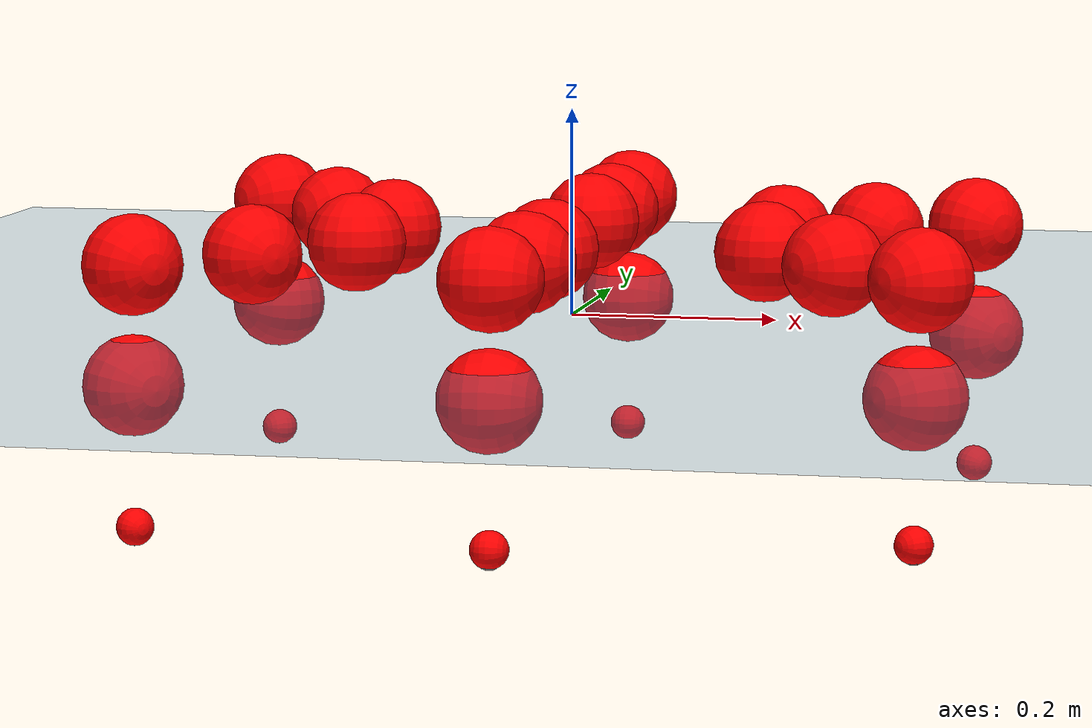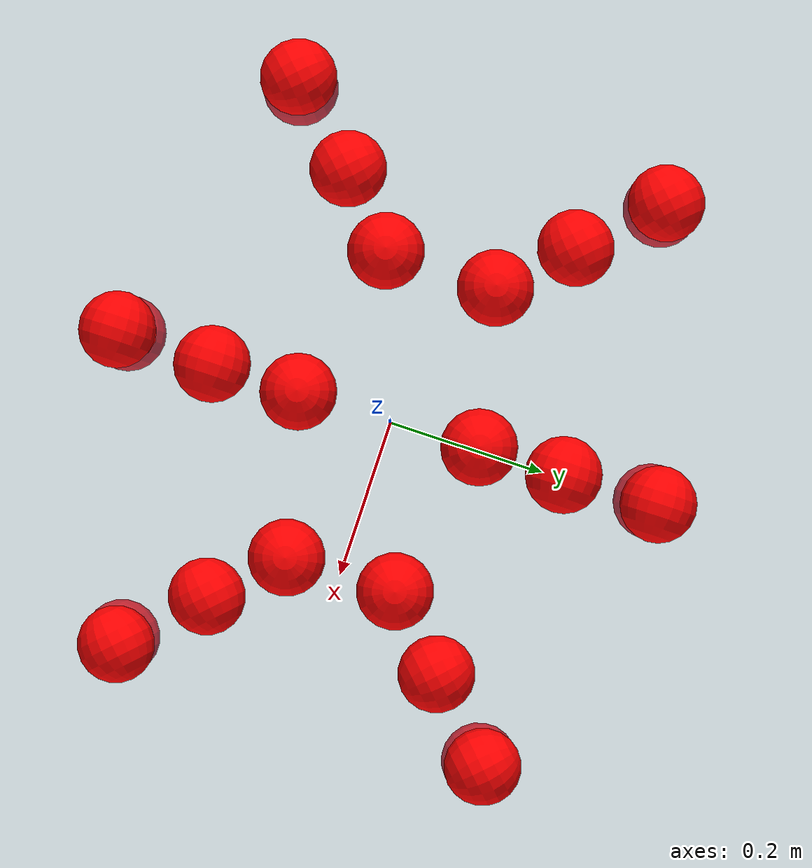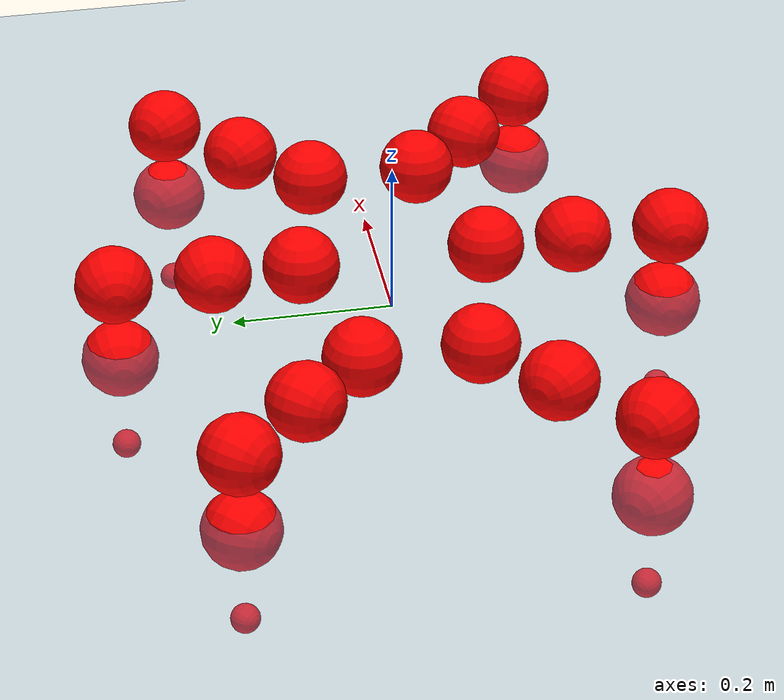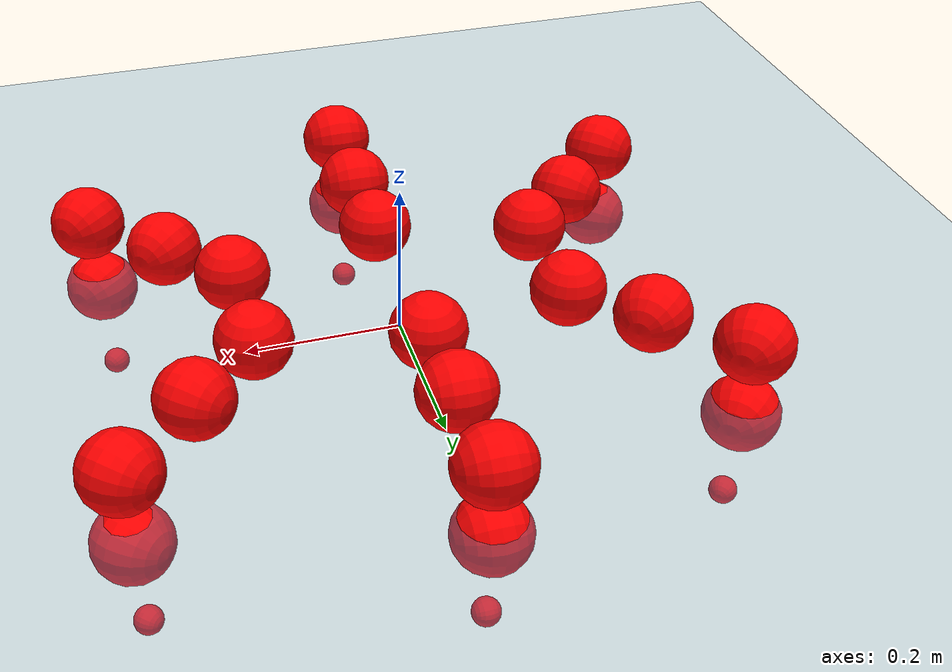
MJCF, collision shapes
<mujoco model="Golem">
  <compiler angle="radian" assetdir="assets" balanceinertia="true" inertiafromgeom="false"/>

  <option timestep="0.005" density="1.2" viscosity="2e-05"/>

  <size nkey="1"/>

  <visual>
    <quality shadowsize="8192"/>
    <map shadowclip="0.5"/>
  </visual>

  <default>
    <default class="/">
      <joint armature="0.01" damping="0.01" frictionloss="0.01"/>
      <geom contype="0" conaffinity="0" group="1" solref="-1000 -80"/>
      <site size="0.01 0.005 0.005" group="5"/>
      <general forcelimited="true" biastype="affine" gainprm="25" biasprm="0 -25 -0.5"/>
      <default class="visual">
        <geom type="mesh" group="2"/>
      </default>
      <default class="collision">
        <geom group="3"/>
      </default>
      <default class="foot">
        <geom size="0.01 0 0" condim="6" group="4" priority="1" solimp="0.015 1 0.01"/>
      </default>
      <default class="reward_collision_sphere">
        <geom group="5" rgba="1 0 0 1"/>
      </default>
    </default>
  </default>

  <asset>
    <texture type="skybox" colorspace="auto" name="//unnamed_texture_0" builtin="gradient" rgb1="0.95 0.95 0.95" rgb2="0.95 0.95 0.95" width="100" height="600"/>
    <texture type="2d" colorspace="auto" name="texplane" builtin="checker" rgb1="0.345 0.575 0.748" rgb2="0.345 0.575 0.748" markrgb="1 1 1" width="512" height="512"/>
    <material name="MatPlane" class="/" texture="texplane" texuniform="true" texrepeat="2 2" specular="0.9"/>
    <mesh name="body" class="/" file="body.stl" scale="0.001 0.001 0.001"/>
    <mesh name="coxa" class="/" file="coxa.stl" scale="0.001 0.001 0.001"/>
    <mesh name="femur" class="/" file="femur.stl" scale="0.001 0.001 0.001"/>
    <mesh name="tibia" class="/" file="tibia.stl" scale="0.001 0.001 0.001"/>
    <mesh name="tarsus" class="/" file="tarsus.stl" scale="0.001 0.001 0.001"/>
  </asset>

  <worldbody>
    <geom name="floor" class="/" size="100 100 0.125" type="plane" group="0" material="MatPlane"/>
    <light name="toplight_shadow" class="/" pos="0 0 5" dir="0.0990148 0.0990148 -0.990148" type="directional" ambient="0.04 0.04 0.04" diffuse="0.55 0.55 0.55" specular="0.12 0.12 0.12"/>
    <light name="toplight_fill" class="/" pos="0 0 5" dir="0.0990148 0.0990148 -0.990148" type="directional" castshadow="false" ambient="0.04 0.04 0.04" diffuse="0.3 0.3 0.3" specular="0.08 0.08 0.08"/>
    <body name="trunk" pos="-0.000662933 -4.47675e-05 -0.00182861" quat="0.999999 0.000735661 0.000411478 -0.000658571">
      <inertial pos="-0.00172367 -0.00294642 0.00161591" quat="0.999935 0.00771006 -0.00651803 0.00535615" mass="6.14462" diaginertia="0.0286949 0.0214919 0.0213945"/>
      <joint name="//unnamed_joint_0" type="free"/>
      <geom name="//unnamed_geom_1" class="/" pos="0 0 0.0750236" quat="1 0 0 0" type="mesh" rgba="0.9 0.9 0.9 1" mesh="body"/>
      <site name="imu" class="/" pos="0.172968 -0.0130166 0.107062" size="0.0119525"/>
      <camera name="track" class="/" pos="0 -2.32868 0" quat="0.707107 0.707107 0 0" mode="trackcom"/>
      <camera name="ego_camera" class="/" pos="0.162392 0 0.117224" quat="-0.5 -0.5 0.5 0.5"/>
      <body name="coxa_RR" pos="-0.223059 -0.0971454 0.0764189" quat="0.38291 2.63575e-06 -0.00012922 -0.923786">
        <inertial pos="-0.0021529 -0.000654886 -0.0021329" quat="0.999987 0.00364415 -0.00320186 0.00161641" mass="0.342037" diaginertia="0.0299448 0.0214315 0.0222424"/>
        <joint name="coxa_joint_RR" class="/" pos="0 0 0" axis="0.0033873 -0.00237848 -0.999991" stiffness="0.000144793" range="-3.18296 3.09443" armature="0.0106529" damping="0" frictionloss="0.0110515"/>
        <geom name="//unnamed_geom_2" class="/" type="mesh" rgba="0.2 0.2 0.2 1" mesh="coxa"/>
        <geom name="//unnamed_geom_3" class="reward_collision_sphere" size="0.04781" pos="-0.037475 0 0"/>
        <body name="femur_RR" pos="0.0744417 -0.00424924 -0.00457475" quat="0.500159 -0.500797 0.499988 0.499054">
          <inertial pos="-0.00258054 -0.00215268 -0.0034293" quat="0.999928 0.00816648 -0.00603453 0.00638774" mass="0.341777" diaginertia="0.0303953 0.022036 0.0215096"/>
          <joint name="femur_joint_RR" class="/" pos="0 0 0" axis="-0.00667696 0.0142581 -0.999876" range="-3.09327 3.13128" armature="0.013526" damping="0.0144865" frictionloss="0.00983328"/>
          <geom name="//unnamed_geom_4" class="/" type="mesh" rgba="0.9 0.9 0.9 1" mesh="femur"/>
          <geom name="//unnamed_geom_5" class="reward_collision_sphere" size="0.04781"/>
          <body name="tibia_RR" pos="0.000727069 -0.128772 0.00388272" quat="-0.000323644 1 0.000359473 -0.000125677">
            <inertial pos="0.00154905 0.00320816 -0.00184563" quat="0.99998 0.00195912 -0.00278895 0.00525496" mass="0.348528" diaginertia="0.0304039 0.0210799 0.0220218"/>
            <joint name="tibia_joint_RR" class="/" pos="0 0 0" axis="-0.00475146 -0.00336357 0.999983" stiffness="0.00800778" range="-3.14125 3.13176" armature="0.0127059" damping="0" frictionloss="0.011307"/>
            <geom name="//unnamed_geom_6" class="/" type="mesh" rgba="0.2 0.2 0.2 1" mesh="tibia"/>
            <geom name="//unnamed_geom_7" class="reward_collision_sphere" size="0.04781"/>
            <body name="tarsus_RR" pos="0.113124 0.000779851 -0.000285725" quat="1 -8.19593e-05 0.000489985 0.000557523">
              <inertial pos="0.0739871 0.00235454 -0.000744604" quat="0.496576 0.49728 0.506553 0.499528" mass="0.344266" diaginertia="0.0298878 0.0208325 0.0228931"/>
              <joint name="tarsus_joint_RR" class="/" pos="0 0 0" axis="0.0148253 -0.00698369 0.999866" range="-3.07351 3.06394" armature="0.0123569" damping="0.00227838" frictionloss="0.0116996"/>
              <geom name="//unnamed_geom_8" class="/" type="mesh" rgba="0.9 0.9 0.9 1" mesh="tarsus"/>
              <geom name="foot_1" class="foot" size="0.0122958" pos="0.139907 0 0" quat="0 -0.707107 0 0.707107"/>
              <geom name="//unnamed_geom_10" class="reward_collision_sphere" size="0.04781"/>
              <geom name="//unnamed_geom_11" class="reward_collision_sphere" size="0.0179287" pos="0.134285 0 0"/>
              <site name="foot_1" class="foot" pos="0.139907 0 0" quat="0 -0.707107 0 0.707107" size="0.0119525"/>
            </body>
          </body>
        </body>
      </body>
      <body name="coxa_RM" pos="0.00196336 -0.155744 0.0804219" quat="0.707063 0.000399384 -0.000965305 -0.70715">
        <inertial pos="0.000916792 -0.0014191 -5.06621e-06" quat="0.999892 0.0109687 0.00186404 0.00963815" mass="0.346902" diaginertia="0.0311436 0.0213834 0.0220769"/>
        <joint name="coxa_joint_RM" class="/" pos="0 0 0" axis="-0.0132129 -0.00769533 -0.999883" range="-3.18629 3.18079" armature="0.0114867" damping="0.0250579" frictionloss="0.0109591"/>
        <geom name="//unnamed_geom_12" class="/" type="mesh" rgba="0.2 0.2 0.2 1" mesh="coxa"/>
        <geom name="//unnamed_geom_13" class="reward_collision_sphere" size="0.04781" pos="-0.037475 0 0"/>
        <body name="femur_RM" pos="0.0737695 0.00087596 0.00111437" quat="0.499552 -0.500473 0.500517 0.499458">
          <inertial pos="0.00240512 -0.00164571 0.00355946" quat="0.999975 -0.00309949 -0.000811965 0.00635323" mass="0.336014" diaginertia="0.0296961 0.0212457 0.0226461"/>
          <joint name="femur_joint_RM" class="/" pos="0 0 0" axis="-0.00801834 0.00468282 -0.999957" stiffness="0.00838558" range="-3.08756 3.09688" armature="0.0134389" damping="0.027406" frictionloss="0.012909"/>
          <geom name="//unnamed_geom_14" class="/" type="mesh" rgba="0.9 0.9 0.9 1" mesh="femur"/>
          <geom name="//unnamed_geom_15" class="reward_collision_sphere" size="0.04781"/>
          <body name="tibia_RM" pos="-3.18305e-05 -0.124107 -0.00355758" quat="0.000701573 1 -8.49624e-05 -0.000658986">
            <inertial pos="0.00161574 0.00292345 -0.00100223" quat="1 0.000288376 0.000145034 -7.93173e-05" mass="0.355489" diaginertia="0.0315892 0.0224584 0.0232907"/>
            <joint name="tibia_joint_RM" class="/" pos="0 0 0" axis="-0.00833393 0.00719918 0.999939" range="-3.08992 3.16252" armature="0.0107319" damping="0.000273079" frictionloss="0.01326"/>
            <geom name="//unnamed_geom_16" class="/" type="mesh" rgba="0.2 0.2 0.2 1" mesh="tibia"/>
            <geom name="//unnamed_geom_17" class="reward_collision_sphere" size="0.04781"/>
            <body name="tarsus_RM" pos="0.109421 -0.00431015 0.00222508" quat="0.999999 0.000788798 -0.000639631 0.000137059">
              <inertial pos="0.072385 -0.000601025 0.000800545" quat="0.500067 0.499954 0.499959 0.500019" mass="0.354436" diaginertia="0.0318383 0.0220336 0.0237573"/>
              <joint name="tarsus_joint_RM" class="/" pos="0 0 0" axis="-0.00876959 0.00746202 0.999934" range="-3.11282 3.19274" armature="0.0118789" damping="0.00565521" frictionloss="0.0104006"/>
              <geom name="//unnamed_geom_18" class="/" type="mesh" rgba="0.9 0.9 0.9 1" mesh="tarsus"/>
              <geom name="foot_2" class="foot" size="0.0130652" pos="0.139907 0 0" quat="0 -0.707107 0 0.707107"/>
              <geom name="//unnamed_geom_20" class="reward_collision_sphere" size="0.04781"/>
              <geom name="//unnamed_geom_21" class="reward_collision_sphere" size="0.0179287" pos="0.134285 0 0"/>
              <site name="foot_2" class="foot" pos="0.139907 0 0" quat="0 -0.707107 0 0.707107" size="0.0119525"/>
            </body>
          </body>
        </body>
      </body>
      <body name="coxa_RF" pos="0.226217 -0.0944187 0.0768038" quat="0.923947 0.000471104 0.000563749 -0.38252">
        <inertial pos="0.00266509 0.00425558 0.00237948" quat="0.999913 -0.0114284 0.00621095 -0.0022993" mass="0.336334" diaginertia="0.0299629 0.0224337 0.0232233"/>
        <joint name="coxa_joint_RF" class="/" pos="0 0 0" axis="0.0140953 0.0031301 -0.999896" range="-3.14395 3.14737" armature="0.0111788" damping="0.00862572" frictionloss="0.0124889"/>
        <geom name="//unnamed_geom_22" class="/" type="mesh" rgba="0.2 0.2 0.2 1" mesh="coxa"/>
        <geom name="//unnamed_geom_23" class="reward_collision_sphere" size="0.04781" pos="-0.037475 0 0"/>
        <body name="femur_RF" pos="0.0714488 -0.00144398 -0.00139958" quat="0.499965 -0.500042 0.50002 0.499973">
          <inertial pos="0.00219196 -0.000120884 -0.00038507" quat="0.999913 0.00520713 0.0120115 0.0016284" mass="0.34823" diaginertia="0.0302228 0.0227792 0.022597"/>
          <joint name="femur_joint_RF" class="/" pos="0 0 0" axis="-0.00179111 0.00184631 -0.999997" range="-3.18275 3.1869" armature="0.0115676" damping="0.00739105" frictionloss="0.0118707"/>
          <geom name="//unnamed_geom_24" class="/" type="mesh" rgba="0.9 0.9 0.9 1" mesh="femur"/>
          <geom name="//unnamed_geom_25" class="reward_collision_sphere" size="0.04781"/>
          <body name="tibia_RF" pos="-0.000188935 -0.125781 0.00222457" quat="0.000189255 1 1.75619e-05 0.000360877">
            <inertial pos="0.000641825 -0.00185536 -0.000210242" quat="0.99989 0.00767368 -0.00843649 0.00943372" mass="0.324613" diaginertia="0.0308119 0.0209938 0.0219346"/>
            <joint name="tibia_joint_RF" class="/" pos="0 0 0" axis="0.00113736 -0.000766764 0.999999" range="-3.1419 3.13715" armature="0.0133651" damping="0.00542318" frictionloss="0.0114332"/>
            <geom name="//unnamed_geom_26" class="/" type="mesh" rgba="0.2 0.2 0.2 1" mesh="tibia"/>
            <geom name="//unnamed_geom_27" class="reward_collision_sphere" size="0.04781"/>
            <body name="tarsus_RF" pos="0.10636 -0.000116645 0.00429679" quat="1 -3.66114e-06 -3.99121e-06 -0.000782401">
              <inertial pos="0.0777583 0.00138053 0.00251609" quat="0.489592 0.498988 0.50542 0.505828" mass="0.349421" diaginertia="0.0298158 0.021322 0.0223963"/>
              <joint name="tarsus_joint_RF" class="/" pos="0 0 0" axis="0.0030182 -0.00135101 0.999995" range="-3.13833 3.14131" armature="0.0118621" damping="0" frictionloss="0.0103725"/>
              <geom name="//unnamed_geom_28" class="/" type="mesh" rgba="0.9 0.9 0.9 1" mesh="tarsus"/>
              <geom name="foot_3" class="foot" size="0.0127984" pos="0.139907 0 0" quat="0 -0.707107 0 0.707107"/>
              <geom name="//unnamed_geom_30" class="reward_collision_sphere" size="0.04781"/>
              <geom name="//unnamed_geom_31" class="reward_collision_sphere" size="0.0179287" pos="0.134285 0 0"/>
              <site name="foot_3" class="foot" pos="0.139907 0 0" quat="0 -0.707107 0 0.707107" size="0.0119525"/>
            </body>
          </body>
        </body>
      </body>
      <body name="coxa_LR" pos="-0.222042 0.0982727 0.0748083" quat="0.382948 -0.0008253 0.000349759 0.92377">
        <inertial pos="-0.00176703 -0.0024016 -0.000991863" quat="0.999984 0.00203757 -0.00507346 -0.00171709" mass="0.340929" diaginertia="0.0312421 0.0218926 0.0235667"/>
        <joint name="coxa_joint_LR" class="/" pos="0 0 0" axis="0.0105663 0.0115058 -0.999878" range="-3.17952 3.18892" armature="0.0104873" damping="0.0326624" frictionloss="0.0134232"/>
        <geom name="//unnamed_geom_32" class="/" type="mesh" rgba="0.2 0.2 0.2 1" mesh="coxa"/>
        <geom name="//unnamed_geom_33" class="reward_collision_sphere" size="0.04781" pos="-0.037475 0 0"/>
        <body name="femur_LR" pos="0.0727288 -0.000522961 0.00309296" quat="0.501179 -0.499114 0.500147 0.499558">
          <inertial pos="-0.00158579 -0.00237676 0.000231633" quat="0.999918 0.00551608 0.0115135 -0.000864937" mass="0.361676" diaginertia="0.0304763 0.0215136 0.0219354"/>
          <joint name="femur_joint_LR" class="/" pos="0 0 0" axis="0.000162063 -0.000298678 1" stiffness="0.0107398" range="-3.07233 3.18055" armature="0.0132563" damping="0.00864516" frictionloss="0.0115337"/>
          <geom name="//unnamed_geom_34" class="/" type="mesh" rgba="0.9 0.9 0.9 1" mesh="femur"/>
          <geom name="//unnamed_geom_35" class="reward_collision_sphere" size="0.04781"/>
          <body name="tibia_LR" pos="-0.00298406 -0.12396 -0.000502359" quat="-0.000166942 1 -0.000864518 5.60634e-05">
            <inertial pos="0.00181262 0.000373921 0.00216102" quat="0.999996 -0.0020878 -0.00100367 0.00179991" mass="0.341713" diaginertia="0.0315342 0.0212465 0.0219477"/>
            <joint name="tibia_joint_LR" class="/" pos="0 0 0" axis="0.00683343 -0.00216715 -0.999974" range="-3.10148 3.15832" armature="0.0104166" damping="0.00664177" frictionloss="0.0114166"/>
            <geom name="//unnamed_geom_36" class="/" type="mesh" rgba="0.2 0.2 0.2 1" mesh="tibia"/>
            <geom name="//unnamed_geom_37" class="reward_collision_sphere" size="0.04781"/>
            <body name="tarsus_LR" pos="0.106591 0.00248218 -0.00058785" quat="0.999999 -0.000984794 0.000429272 0.000249725">
              <inertial pos="0.0759922 0.00069431 -0.00298106" quat="0.499672 0.49995 0.501557 0.498817" mass="0.337838" diaginertia="0.0300751 0.021527 0.022201"/>
              <joint name="tarsus_joint_LR" class="/" pos="0 0 0" axis="-4.31744e-05 0.000101506 -1" range="-3.1368 3.14427" armature="0.0133192" damping="0.0355329" frictionloss="0.011016"/>
              <geom name="//unnamed_geom_38" class="/" type="mesh" rgba="0.9 0.9 0.9 1" mesh="tarsus"/>
              <geom name="foot_4" class="foot" size="0.01247" pos="0.139907 0 0" quat="0.707107 0 -0.707107 0"/>
              <geom name="//unnamed_geom_40" class="reward_collision_sphere" size="0.04781"/>
              <geom name="//unnamed_geom_41" class="reward_collision_sphere" size="0.0179287" pos="0.134285 0 0"/>
              <site name="foot_4" class="foot" pos="0.139907 0 0" quat="0.707107 0 -0.707107 0" size="0.0119525"/>
            </body>
          </body>
        </body>
      </body>
      <body name="coxa_LM" pos="-0.0028699 0.151567 0.0806356" quat="0.70674 0.000500927 0.000154553 0.707473">
        <inertial pos="-0.00129992 -0.000435292 0.0029852" quat="0.999918 0.000501825 -0.0111517 0.00631315" mass="0.347397" diaginertia="0.0294123 0.021757 0.0217557"/>
        <joint name="coxa_joint_LM" class="/" pos="0 0 0" axis="-0.00112157 -0.0011659 -0.999999" range="-3.10812 3.14849" armature="0.0117386" damping="0" frictionloss="0.0112067"/>
        <geom name="//unnamed_geom_42" class="/" type="mesh" rgba="0.2 0.2 0.2 1" mesh="coxa"/>
        <geom name="//unnamed_geom_43" class="reward_collision_sphere" size="0.04781" pos="-0.037475 0 0"/>
        <body name="femur_LM" pos="0.0716125 0.000365629 -0.000645609" quat="0.500015 -0.499981 0.500002 0.500002">
          <inertial pos="0.000876577 -0.000424714 -0.00172299" quat="0.999913 0.00960635 0.00859818 -0.00261839" mass="0.332979" diaginertia="0.0321527 0.0213061 0.0219728"/>
          <joint name="femur_joint_LM" class="/" pos="0 0 0" axis="-0.0115972 -0.00652437 0.999911" stiffness="0.0059864" range="-3.18586 3.09602" armature="0.0102218" damping="0.0331668" frictionloss="0.0118793"/>
          <geom name="//unnamed_geom_44" class="/" type="mesh" rgba="0.9 0.9 0.9 1" mesh="femur"/>
          <geom name="//unnamed_geom_45" class="reward_collision_sphere" size="0.04781"/>
          <body name="tibia_LM" pos="-0.00129403 -0.121467 0.00193442" quat="6.50322e-05 0.999999 0.00104735 0.000331931">
            <inertial pos="0.0023061 -9.65248e-05 0.000480786" quat="0.999914 -0.0100587 -0.00649228 0.00535901" mass="0.354033" diaginertia="0.0307897 0.0215452 0.0227027"/>
            <joint name="tibia_joint_LM" class="/" pos="0 0 0" axis="-0.00183146 0.000824035 -0.999998" range="-3.08573 3.09609" armature="0.0117018" damping="0.00117443" frictionloss="0.0144041"/>
            <geom name="//unnamed_geom_46" class="/" type="mesh" rgba="0.2 0.2 0.2 1" mesh="tibia"/>
            <geom name="//unnamed_geom_47" class="reward_collision_sphere" size="0.04781"/>
            <body name="tarsus_LM" pos="0.107782 -0.00167431 -0.00304363" quat="0.999999 0.000423963 -0.00103725 -0.000954645">
              <inertial pos="0.0755086 0.000382636 -0.00103616" quat="0.501704 0.495889 0.500368 0.502014" mass="0.352734" diaginertia="0.0308682 0.0213744 0.0223951"/>
              <joint name="tarsus_joint_LM" class="/" pos="0 0 0" axis="-0.0128062 -0.00585079 -0.999901" range="-3.14044 3.13668" armature="0.0135635" damping="0" frictionloss="0.0126374"/>
              <geom name="//unnamed_geom_48" class="/" type="mesh" rgba="0.9 0.9 0.9 1" mesh="tarsus"/>
              <geom name="foot_5" class="foot" size="0.010107" pos="0.139907 0 0" quat="0.707107 0 -0.707107 0"/>
              <geom name="//unnamed_geom_50" class="reward_collision_sphere" size="0.04781"/>
              <geom name="//unnamed_geom_51" class="reward_collision_sphere" size="0.0179287" pos="0.134285 0 0"/>
              <site name="foot_5" class="foot" pos="0.139907 0 0" quat="0.707107 0 -0.707107 0" size="0.0119525"/>
            </body>
          </body>
        </body>
      </body>
      <body name="coxa_LF" pos="0.223689 0.0980277 0.0776768" quat="0.923636 -0.000691502 -0.000585933 0.38327">
        <inertial pos="-0.000210908 0.00333669 -5.46133e-05" quat="0.99997 -0.00182806 0.00754368 0.000384397" mass="0.336372" diaginertia="0.029059 0.0197733 0.0204962"/>
        <joint name="coxa_joint_LF" class="/" pos="0 0 0" axis="-0.000556418 0.00410414 -0.999991" range="-3.13541 3.14046" armature="0.0130115" damping="0.00251134" frictionloss="0.0124124"/>
        <geom name="//unnamed_geom_52" class="/" type="mesh" rgba="0.2 0.2 0.2 1" mesh="coxa"/>
        <geom name="//unnamed_geom_53" class="reward_collision_sphere" size="0.04781" pos="-0.037475 0 0"/>
        <body name="femur_LF" pos="0.0761021 -0.000311388 -0.00410271" quat="0.499896 -0.499452 0.500782 0.49987">
          <inertial pos="-0.00152063 0.000919491 0.00142073" quat="0.999918 -0.00978838 -0.00760745 0.00335764" mass="0.347362" diaginertia="0.0319414 0.0218999 0.0225395"/>
          <joint name="femur_joint_LF" class="/" pos="0 0 0" axis="-0.0117031 -0.00860643 0.999894" stiffness="0.0250203" range="-3.18748 3.13185" armature="0.0124886" damping="0.0163915" frictionloss="0.0114159"/>
          <geom name="//unnamed_geom_54" class="/" type="mesh" rgba="0.9 0.9 0.9 1" mesh="femur"/>
          <geom name="//unnamed_geom_55" class="reward_collision_sphere" size="0.04781"/>
          <body name="tibia_LF" pos="0.00290795 -0.127083 -0.00059842" quat="-6.07915e-06 1 -9.08309e-06 -2.33553e-05">
            <inertial pos="-0.00232026 -0.00229736 -0.00370293" quat="0.999915 0.00994943 0.000602951 0.00836795" mass="0.339342" diaginertia="0.0305262 0.0215813 0.0210663"/>
            <joint name="tibia_joint_LF" class="/" pos="0 0 0" axis="0.00184908 -0.0112391 -0.999935" range="-3.12695 3.18437" armature="0.0104991" damping="0.00515151" frictionloss="0.0113608"/>
            <geom name="//unnamed_geom_56" class="/" type="mesh" rgba="0.2 0.2 0.2 1" mesh="tibia"/>
            <geom name="//unnamed_geom_57" class="reward_collision_sphere" size="0.04781"/>
            <body name="tarsus_LF" pos="0.109177 0.000643641 0.0017492" quat="1 -0.000216337 0.000215443 0.000446702">
              <inertial pos="0.074213 -0.00190872 -0.00225719" quat="0.497396 0.501751 0.501671 0.499168" mass="0.343118" diaginertia="0.0297026 0.0211468 0.0210574"/>
              <joint name="tarsus_joint_LF" class="/" pos="0 0 0" axis="-0.00285866 -0.00351135 -0.99999" range="-3.12096 3.19072" armature="0.0129844" damping="0.029042" frictionloss="0.0128811"/>
              <geom name="//unnamed_geom_58" class="/" type="mesh" rgba="0.9 0.9 0.9 1" mesh="tarsus"/>
              <geom name="foot_6" class="foot" size="0.0122853" pos="0.139907 0 0" quat="0.707107 0 -0.707107 0"/>
              <geom name="//unnamed_geom_60" class="reward_collision_sphere" size="0.04781"/>
              <geom name="//unnamed_geom_61" class="reward_collision_sphere" size="0.0179287" pos="0.134285 0 0"/>
              <site name="foot_6" class="foot" pos="0.139907 0 0" quat="0.707107 0 -0.707107 0" size="0.0119525"/>
            </body>
          </body>
        </body>
      </body>
    </body>
  </worldbody>

  <contact>
    <pair class="/" geom1="floor" geom2="foot_1" name="//unnamed_contact_0"/>
    <pair class="/" geom1="floor" geom2="foot_2" name="//unnamed_contact_1"/>
    <pair class="/" geom1="floor" geom2="foot_3" name="//unnamed_contact_2"/>
    <pair class="/" geom1="floor" geom2="foot_4" name="//unnamed_contact_3"/>
    <pair class="/" geom1="floor" geom2="foot_5" name="//unnamed_contact_4"/>
    <pair class="/" geom1="floor" geom2="foot_6" name="//unnamed_contact_5"/>
  </contact>

  <actuator>
    <general name="coxa_joint_RR" class="/" joint="coxa_joint_RR" forcerange="-7.90396 7.90396" gainprm="26.9493" biasprm="0 -26.9493 -0.601928"/>
    <general name="femur_joint_RR" class="/" joint="femur_joint_RR" forcerange="-8.45075 8.45075" gainprm="26.9493" biasprm="0 -26.9493 -0.601928"/>
    <general name="tibia_joint_RR" class="/" joint="tibia_joint_RR" forcerange="-8.82023 8.82023" gainprm="26.9493" biasprm="0 -26.9493 -0.601928"/>
    <general name="tarsus_joint_RR" class="/" joint="tarsus_joint_RR" forcerange="-9.04695 9.04695" gainprm="26.9493" biasprm="0 -26.9493 -0.601928"/>
    <general name="coxa_joint_RM" class="/" joint="coxa_joint_RM" forcerange="-8.44003 8.44003" gainprm="26.9493" biasprm="0 -26.9493 -0.601928"/>
    <general name="femur_joint_RM" class="/" joint="femur_joint_RM" forcerange="-8.45164 8.45164" gainprm="26.9493" biasprm="0 -26.9493 -0.601928"/>
    <general name="tibia_joint_RM" class="/" joint="tibia_joint_RM" forcerange="-8.66119 8.66119" gainprm="26.9493" biasprm="0 -26.9493 -0.601928"/>
    <general name="tarsus_joint_RM" class="/" joint="tarsus_joint_RM" forcerange="-8.73247 8.73247" gainprm="26.9493" biasprm="0 -26.9493 -0.601928"/>
    <general name="coxa_joint_RF" class="/" joint="coxa_joint_RF" forcerange="-8.49205 8.49205" gainprm="26.9493" biasprm="0 -26.9493 -0.601928"/>
    <general name="femur_joint_RF" class="/" joint="femur_joint_RF" forcerange="-8.81453 8.81453" gainprm="26.9493" biasprm="0 -26.9493 -0.601928"/>
    <general name="tibia_joint_RF" class="/" joint="tibia_joint_RF" forcerange="-8.8652 8.8652" gainprm="26.9493" biasprm="0 -26.9493 -0.601928"/>
    <general name="tarsus_joint_RF" class="/" joint="tarsus_joint_RF" forcerange="-7.88356 7.88356" gainprm="26.9493" biasprm="0 -26.9493 -0.601928"/>
    <general name="coxa_joint_LR" class="/" joint="coxa_joint_LR" forcerange="-7.88985 7.88985" gainprm="26.9493" biasprm="0 -26.9493 -0.601928"/>
    <general name="femur_joint_LR" class="/" joint="femur_joint_LR" forcerange="-9.07422 9.07422" gainprm="26.9493" biasprm="0 -26.9493 -0.601928"/>
    <general name="tibia_joint_LR" class="/" joint="tibia_joint_LR" forcerange="-9.3944 9.3944" gainprm="26.9493" biasprm="0 -26.9493 -0.601928"/>
    <general name="tarsus_joint_LR" class="/" joint="tarsus_joint_LR" forcerange="-8.81436 8.81436" gainprm="26.9493" biasprm="0 -26.9493 -0.601928"/>
    <general name="coxa_joint_LM" class="/" joint="coxa_joint_LM" forcerange="-8.95722 8.95722" gainprm="26.9493" biasprm="0 -26.9493 -0.601928"/>
    <general name="femur_joint_LM" class="/" joint="femur_joint_LM" forcerange="-8.06362 8.06362" gainprm="26.9493" biasprm="0 -26.9493 -0.601928"/>
    <general name="tibia_joint_LM" class="/" joint="tibia_joint_LM" forcerange="-8.7486 8.7486" gainprm="26.9493" biasprm="0 -26.9493 -0.601928"/>
    <general name="tarsus_joint_LM" class="/" joint="tarsus_joint_LM" forcerange="-9.18933 9.18933" gainprm="26.9493" biasprm="0 -26.9493 -0.601928"/>
    <general name="coxa_joint_LF" class="/" joint="coxa_joint_LF" forcerange="-7.8583 7.8583" gainprm="26.9493" biasprm="0 -26.9493 -0.601928"/>
    <general name="femur_joint_LF" class="/" joint="femur_joint_LF" forcerange="-8.80874 8.80874" gainprm="26.9493" biasprm="0 -26.9493 -0.601928"/>
    <general name="tibia_joint_LF" class="/" joint="tibia_joint_LF" forcerange="-8.69465 8.69465" gainprm="26.9493" biasprm="0 -26.9493 -0.601928"/>
    <general name="tarsus_joint_LF" class="/" joint="tarsus_joint_LF" forcerange="-10.028 10.028" gainprm="26.9493" biasprm="0 -26.9493 -0.601928"/>
  </actuator>

  <sensor>
    <gyro site="imu" name="imu_angular_velocity"/>
    <velocimeter site="imu" name="imu_linear_velocity"/>
    <framelinvel objtype="site" objname="foot_1" name="foot_1_global_linear_velocity"/>
    <framelinvel objtype="site" objname="foot_2" name="foot_2_global_linear_velocity"/>
    <framelinvel objtype="site" objname="foot_3" name="foot_3_global_linear_velocity"/>
    <framelinvel objtype="site" objname="foot_4" name="foot_4_global_linear_velocity"/>
    <framelinvel objtype="site" objname="foot_5" name="foot_5_global_linear_velocity"/>
    <framelinvel objtype="site" objname="foot_6" name="foot_6_global_linear_velocity"/>
  </sensor>

  <keyframe>
    <key name="home" qpos="0 0 0.1457 1 0 0 0 0 0 0 0 0 0 0 0 0 0 0 0 0 0 0 0 0 0 0 0 0 0 0 0"/>
  </keyframe>
</mujoco>
